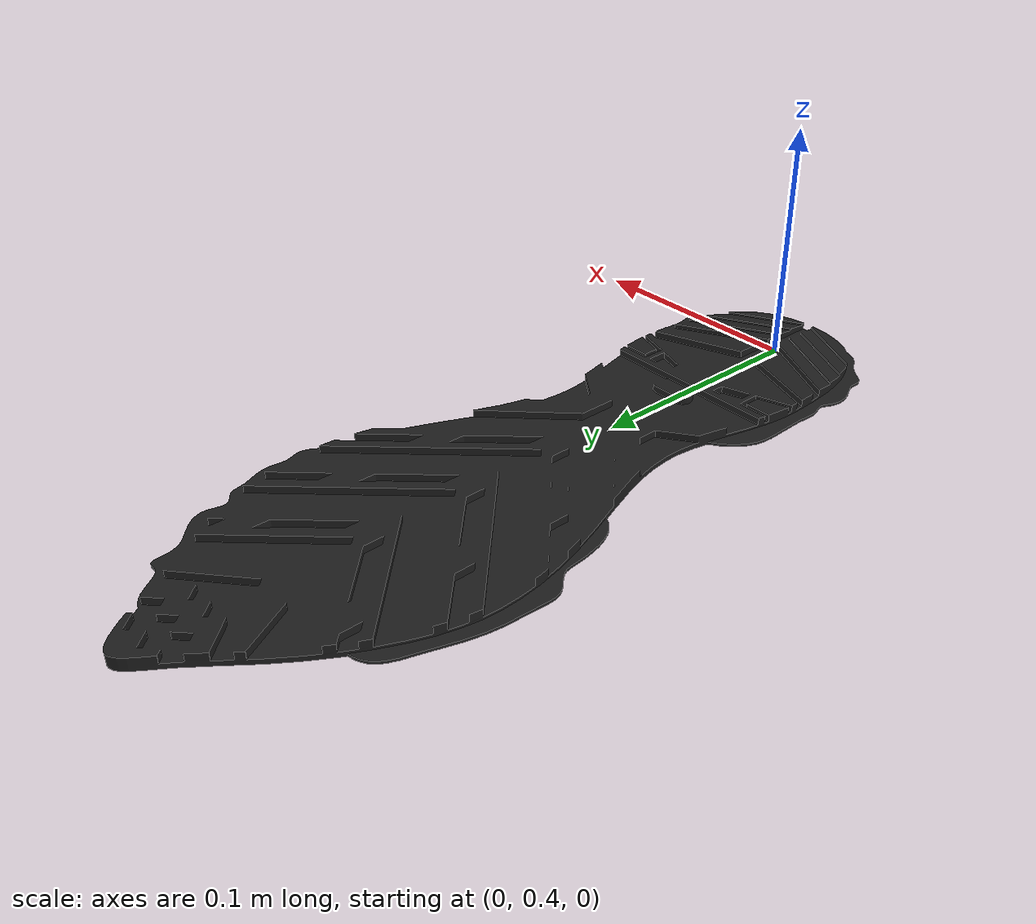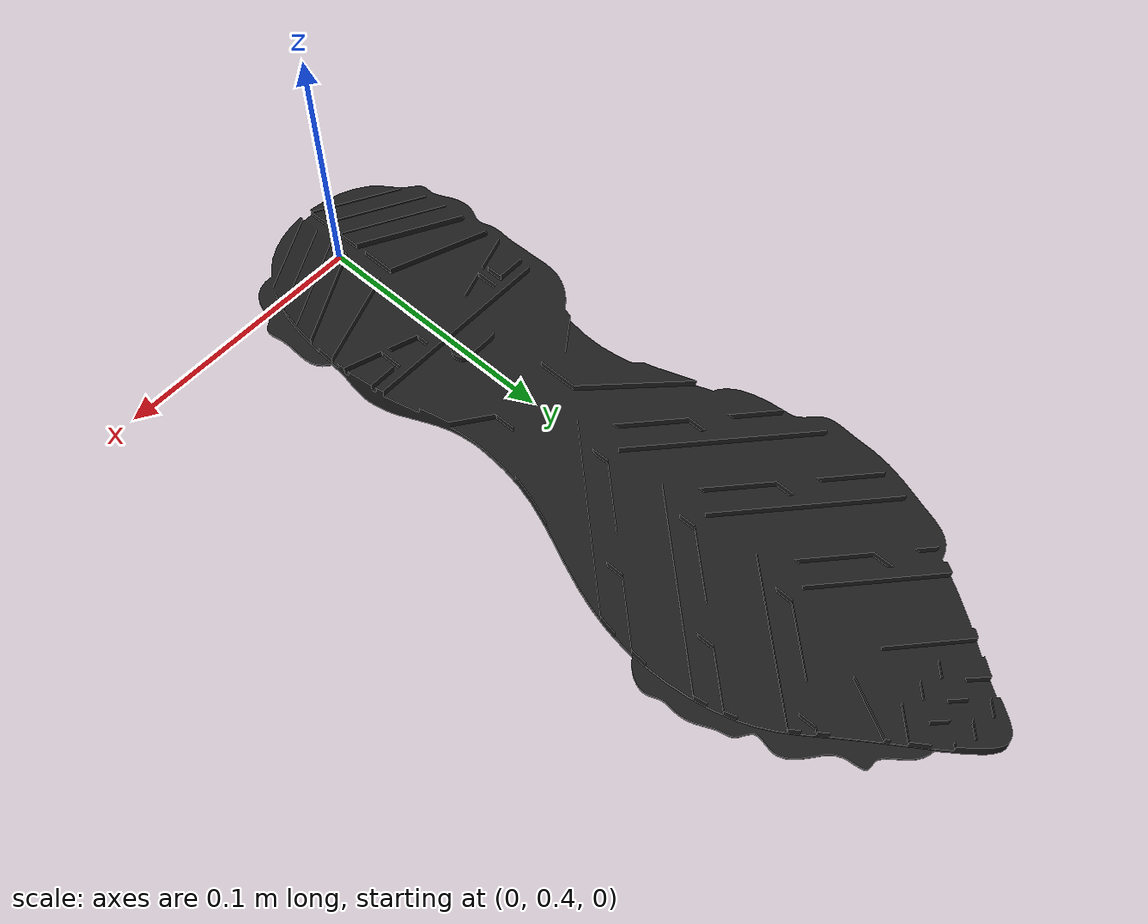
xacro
<?xml version="1.0"?>
<robot xmlns:xacro="http://www.ros.org/wiki/xacro" name="sole" >

<!-- sole -->
<link name="world" />
<joint name="world_joint"  type="fixed">
    <origin xyz="0.06 0.7 0.01" rpy="0 0 0" />
    <parent link="world"/>
    <child link="sole_link"/>
</joint>

<link name="sole_link">
		<inertial>
			<mass value="0.3"/>
			<origin rpy="1.57 -3.14 0 " xyz="0 0 0" />
			<inertia ixx="0" ixy="0" ixz="0" iyy="0"
				iyz="0"
				izz="0"/>
		</inertial>
		<collision>
						<max_contacts>5</max_contacts>
			<geometry>
						<mesh filename="package://sole/meshes/sole.stl" scale="1 1 1" />
			</geometry>
		</collision>
		<visual>
			            <origin rpy="1.57 -3.14 0 " xyz="0 0 0 " />
			<geometry>
						<mesh filename="package://sole/meshes/sole.stl" scale="1 1 1" />
			</geometry>
		</visual>
	</link>
  <gazebo reference="sole_link">
    <material>Gazebo/Black</material>
  </gazebo>

</robot>
